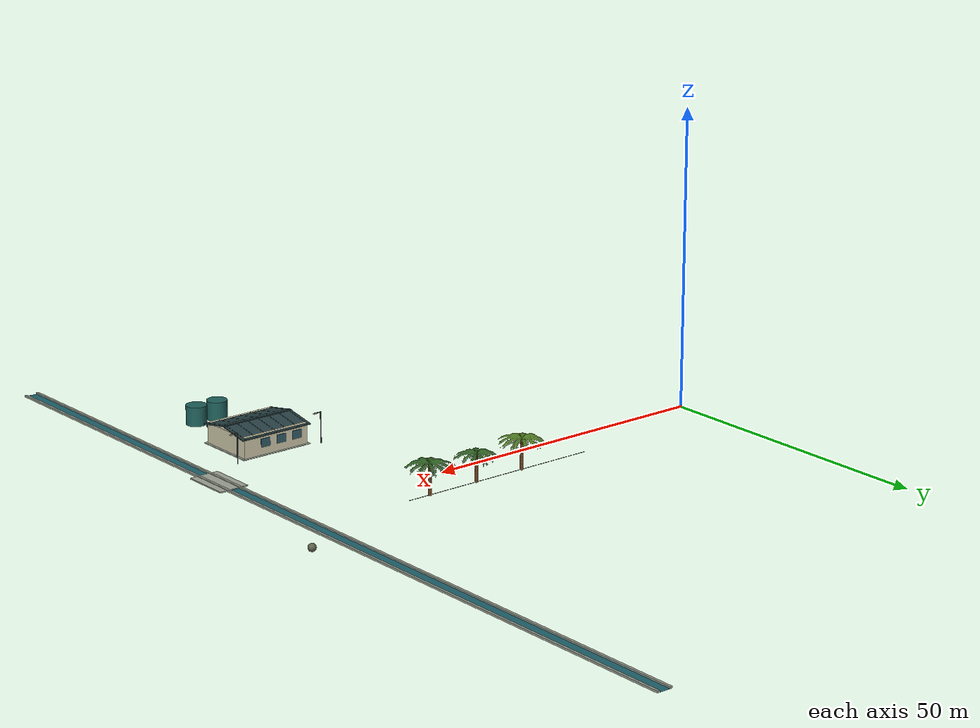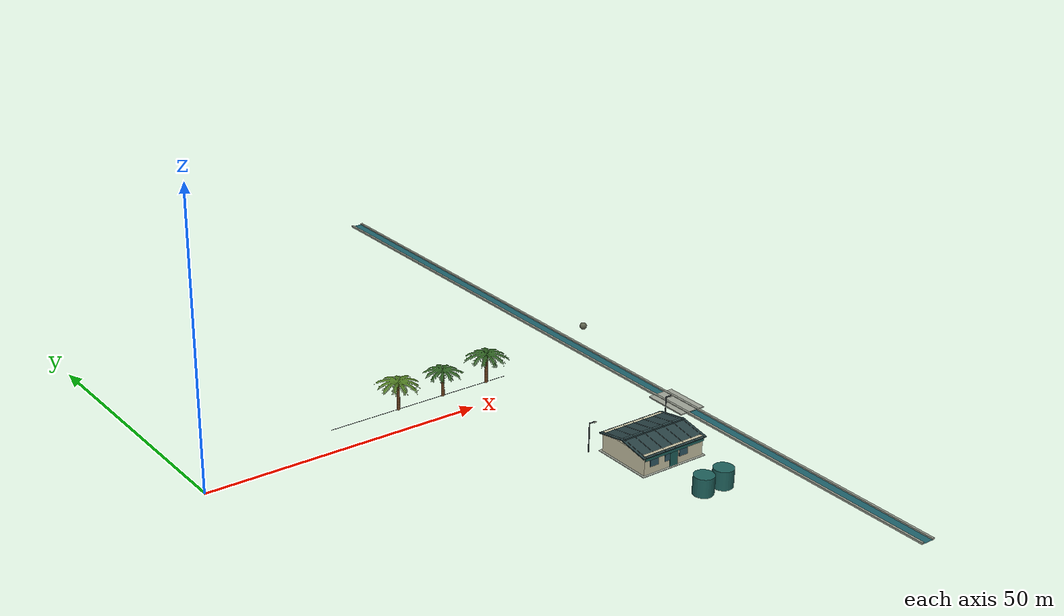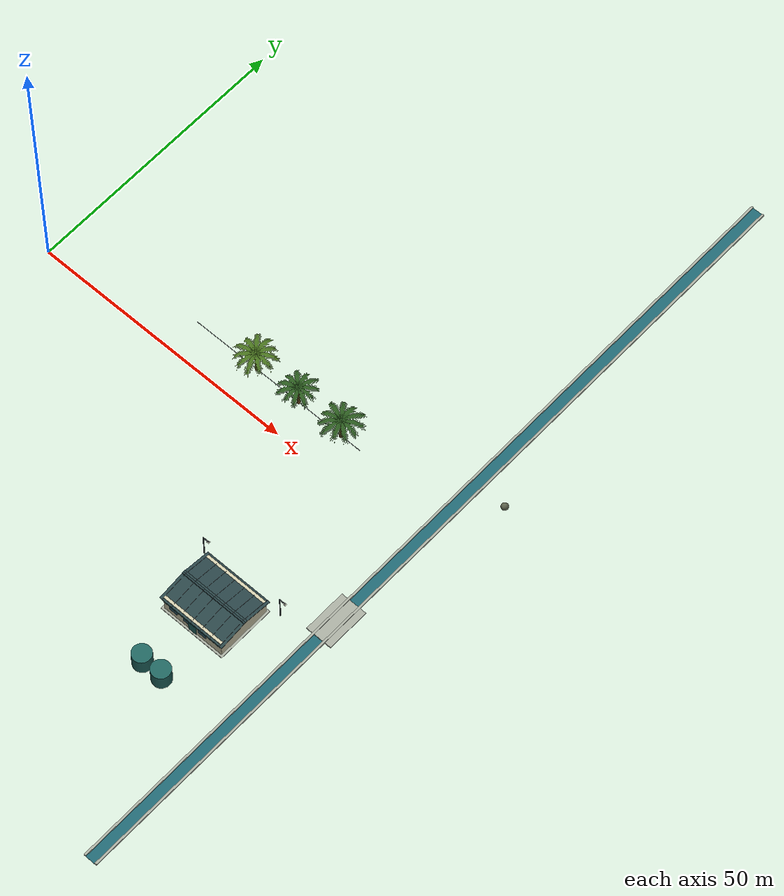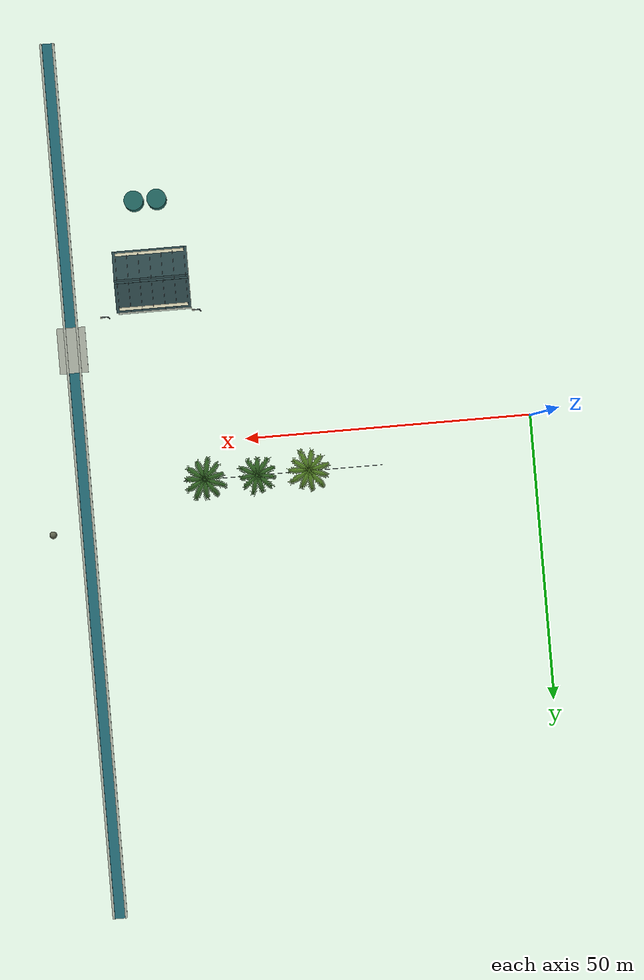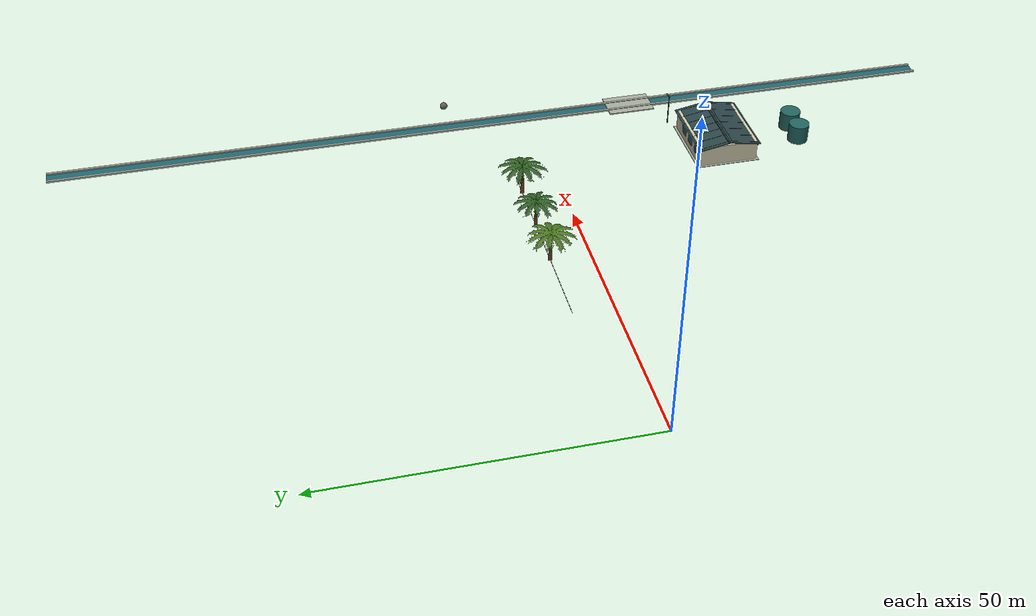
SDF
<sdf version="1.9">
 <world name="fleetscope_estate">
  <model name="irrigation_44_20_0">
   <static>true</static>
   <pose>44 6.5 0 0 0 0</pose>
   <link name="structure">
    <visual name="visual_0">
     <pose>0 0 0.04 0 1.570796 0</pose>
     <geometry><cylinder><radius>0.035</radius><length>35</length></cylinder></geometry>
     <material>
      <ambient>0.25 0.29 0.3 1</ambient>
      <diffuse>0.25 0.29 0.3 1</diffuse>
      <specular>.08 .08 .08 1</specular>
     </material>
    </visual>
    <collision name="collision_0">
     <pose>0 0 0.04 0 1.570796 0</pose>
     <geometry><cylinder><radius>0.035</radius><length>35</length></cylinder></geometry>
    </collision>
   </link>
  </model>
  <model name="palm_033">
   <static>true</static>
   <pose>39.5 6.5 0 0 0 3.937487</pose>
   <link name="structure">
    <visual name="visual_0">
     <geometry>
      <mesh><uri>model://estate_palm/meshes/trunk.obj</uri><scale>1.094903 1.094903 1.094903</scale></mesh>
     </geometry>
     <material>
      <ambient>0.4 0.24 0.11 1</ambient>
      <diffuse>0.4 0.24 0.11 1</diffuse>
      <specular>.08 .08 .08 1</specular>
     </material>
    </visual>
    <visual name="visual_1">
     <geometry>
      <mesh><uri>model://estate_palm/meshes/fronds.obj</uri><scale>1.094903 1.094903 1.094903</scale></mesh>
     </geometry>
     <material>
      <ambient>0.29 0.46 0.12 1</ambient>
      <diffuse>0.29 0.46 0.12 1</diffuse>
      <specular>.08 .08 .08 1</specular>
     </material>
    </visual>
    <collision name="collision_2">
     <pose>0 0 2.463531 0 0 0</pose>
     <geometry>
      <cylinder><radius>0.28467469326689215</radius><length>4.927061998850056</length></cylinder>
     </geometry>
    </collision>
   </link>
  </model>
  <model name="palm_034">
   <static>true</static>
   <pose>48.5 6.5 0 0 0 2.949365</pose>
   <link name="structure">
    <visual name="visual_0">
     <geometry>
      <mesh><uri>model://estate_palm/meshes/trunk.obj</uri><scale>1.000495 1.000495 1.000495</scale></mesh>
     </geometry>
     <material>
      <ambient>0.4 0.24 0.11 1</ambient>
      <diffuse>0.4 0.24 0.11 1</diffuse>
      <specular>.08 .08 .08 1</specular>
     </material>
    </visual>
    <visual name="visual_1">
     <geometry>
      <mesh><uri>model://estate_palm/meshes/fronds.obj</uri><scale>1.000495 1.000495 1.000495</scale></mesh>
     </geometry>
     <material>
      <ambient>0.17 0.36 0.12 1</ambient>
      <diffuse>0.17 0.36 0.12 1</diffuse>
      <specular>.08 .08 .08 1</specular>
     </material>
    </visual>
    <collision name="collision_2">
     <pose>0 0 2.251114 0 0 0</pose>
     <geometry>
      <cylinder><radius>0.2601287509722273</radius><length>4.5022283822116265</length></cylinder>
     </geometry>
    </collision>
   </link>
  </model>
  <model name="palm_035">
   <static>true</static>
   <pose>57.5 6.5 0 0 0 6.202922</pose>
   <link name="structure">
    <visual name="visual_0">
     <geometry>
      <mesh><uri>model://estate_palm/meshes/trunk.obj</uri><scale>1.104482 1.104482 1.104482</scale></mesh>
     </geometry>
     <material>
      <ambient>0.4 0.24 0.11 1</ambient>
      <diffuse>0.4 0.24 0.11 1</diffuse>
      <specular>.08 .08 .08 1</specular>
     </material>
    </visual>
    <visual name="visual_1">
     <geometry>
      <mesh><uri>model://estate_palm/meshes/fronds.obj</uri><scale>1.104482 1.104482 1.104482</scale></mesh>
     </geometry>
     <material>
      <ambient>0.17 0.36 0.12 1</ambient>
      <diffuse>0.17 0.36 0.12 1</diffuse>
      <specular>.08 .08 .08 1</specular>
     </material>
    </visual>
    <collision name="collision_2">
     <pose>0 0 2.485085 0 0 0</pose>
     <geometry>
      <cylinder><radius>0.28716538027294264</radius><length>4.970170043185545</length></cylinder>
     </geometry>
    </collision>
   </link>
  </model>
  <model name="drainage_channel">
   <static>true</static>
   <pose>79 5 0 0 0 0</pose>
   <link name="structure">
    <visual name="visual_0">
     <pose>0 0 0.025 0 0 0</pose>
     <geometry><box><size>1.8 154 0.05</size></box></geometry>
     <material>
      <ambient>0.12 0.39 0.43 1</ambient>
      <diffuse>0.12 0.39 0.43 1</diffuse>
      <specular>.08 .08 .08 1</specular>
     </material>
     <cast_shadows>false</cast_shadows>
    </visual>
    <collision name="collision_0">
     <pose>0 0 0.025 0 0 0</pose>
     <geometry><box><size>1.8 154 0.05</size></box></geometry>
    </collision>
    <visual name="visual_1">
     <pose>-1.1 0 0.15 0 0 0</pose>
     <geometry><box><size>0.4 154 0.3</size></box></geometry>
     <material>
      <ambient>0.63 0.65 0.6 1</ambient>
      <diffuse>0.63 0.65 0.6 1</diffuse>
      <specular>.08 .08 .08 1</specular>
     </material>
    </visual>
    <collision name="collision_1">
     <pose>-1.1 0 0.15 0 0 0</pose>
     <geometry><box><size>0.4 154 0.3</size></box></geometry>
    </collision>
    <visual name="visual_2">
     <pose>1.1 0 0.15 0 0 0</pose>
     <geometry><box><size>0.4 154 0.3</size></box></geometry>
     <material>
      <ambient>0.63 0.65 0.6 1</ambient>
      <diffuse>0.63 0.65 0.6 1</diffuse>
      <specular>.08 .08 .08 1</specular>
     </material>
    </visual>
    <collision name="collision_2">
     <pose>1.1 0 0.15 0 0 0</pose>
     <geometry><box><size>0.4 154 0.3</size></box></geometry>
    </collision>
   </link>
  </model>
  <model name="culvert_crossing">
   <static>true</static>
   <pose>79 -18 0 0 0 0</pose>
   <link name="structure">
    <visual name="visual_0">
     <pose>0 0 0.1 0 0 0</pose>
     <geometry><box><size>5 8 0.2</size></box></geometry>
     <material>
      <ambient>0.63 0.65 0.6 1</ambient>
      <diffuse>0.63 0.65 0.6 1</diffuse>
      <specular>.08 .08 .08 1</specular>
     </material>
    </visual>
    <collision name="collision_0">
     <pose>0 0 0.1 0 0 0</pose>
     <geometry><box><size>5 8 0.2</size></box></geometry>
    </collision>
   </link>
  </model>
  <model name="utility_store">
   <static>true</static>
   <pose>64 -29 0 0 0 0</pose>
   <link name="structure">
    <visual name="visual_0">
     <pose>0 0 0.05 0 0 0</pose>
     <geometry><box><size>12.8 10.8 0.1</size></box></geometry>
     <material>
      <ambient>0.63 0.65 0.6 1</ambient>
      <diffuse>0.63 0.65 0.6 1</diffuse>
      <specular>.08 .08 .08 1</specular>
     </material>
     <cast_shadows>false</cast_shadows>
    </visual>
    <collision name="collision_0">
     <pose>0 0 0.05 0 0 0</pose>
     <geometry><box><size>12.8 10.8 0.1</size></box></geometry>
    </collision>
    <visual name="visual_1">
     <pose>0 0 1.75 0 0 0</pose>
     <geometry><box><size>12 10 3.5</size></box></geometry>
     <material>
      <ambient>0.8 0.78 0.66 1</ambient>
      <diffuse>0.8 0.78 0.66 1</diffuse>
      <specular>.08 .08 .08 1</specular>
     </material>
    </visual>
    <collision name="collision_1">
     <pose>0 0 1.75 0 0 0</pose>
     <geometry><box><size>12 10 3.5</size></box></geometry>
    </collision>
    <visual name="visual_2">
     <pose>-4 -5.035 2.03 0 0 0</pose>
     <geometry><box><size>1.7 0.08 1.4</size></box></geometry>
     <material>
      <ambient>0.19 0.35 0.4 1</ambient>
      <diffuse>0.19 0.35 0.4 1</diffuse>
      <specular>.08 .08 .08 1</specular>
     </material>
    </visual>
    <visual name="visual_3">
     <pose>-4 5.035 2.03 0 0 0</pose>
     <geometry><box><size>1.7 0.08 1.4</size></box></geometry>
     <material>
      <ambient>0.19 0.35 0.4 1</ambient>
      <diffuse>0.19 0.35 0.4 1</diffuse>
      <specular>.08 .08 .08 1</specular>
     </material>
    </visual>
    <visual name="visual_4">
     <pose>-1 -5.035 2.03 0 0 0</pose>
     <geometry><box><size>1.7 0.08 1.4</size></box></geometry>
     <material>
      <ambient>0.19 0.35 0.4 1</ambient>
      <diffuse>0.19 0.35 0.4 1</diffuse>
      <specular>.08 .08 .08 1</specular>
     </material>
    </visual>
    <visual name="visual_5">
     <pose>-1 5.035 2.03 0 0 0</pose>
     <geometry><box><size>1.7 0.08 1.4</size></box></geometry>
     <material>
      <ambient>0.19 0.35 0.4 1</ambient>
      <diffuse>0.19 0.35 0.4 1</diffuse>
      <specular>.08 .08 .08 1</specular>
     </material>
    </visual>
    <visual name="visual_6">
     <pose>2 -5.035 2.03 0 0 0</pose>
     <geometry><box><size>1.7 0.08 1.4</size></box></geometry>
     <material>
      <ambient>0.19 0.35 0.4 1</ambient>
      <diffuse>0.19 0.35 0.4 1</diffuse>
      <specular>.08 .08 .08 1</specular>
     </material>
    </visual>
    <visual name="visual_7">
     <pose>2 5.035 2.03 0 0 0</pose>
     <geometry><box><size>1.7 0.08 1.4</size></box></geometry>
     <material>
      <ambient>0.19 0.35 0.4 1</ambient>
      <diffuse>0.19 0.35 0.4 1</diffuse>
      <specular>.08 .08 .08 1</specular>
     </material>
    </visual>
    <visual name="visual_8">
     <pose>0 -5.065 1.3 0 0 0</pose>
     <geometry><box><size>1.6 0.1 2.6</size></box></geometry>
     <material>
      <ambient>0.12 0.38 0.36 1</ambient>
      <diffuse>0.12 0.38 0.36 1</diffuse>
      <specular>.08 .08 .08 1</specular>
     </material>
    </visual>
    <collision name="collision_8">
     <pose>0 -5.065 1.3 0 0 0</pose>
     <geometry><box><size>1.6 0.1 2.6</size></box></geometry>
    </collision>
    <visual name="visual_9">
     <pose>0 -2.5 3.78 0.18 0 0</pose>
     <geometry><box><size>13 5.8 0.16</size></box></geometry>
     <material>
      <ambient>0.16 0.26 0.27 1</ambient>
      <diffuse>0.16 0.26 0.27 1</diffuse>
      <specular>.08 .08 .08 1</specular>
     </material>
    </visual>
    <collision name="collision_9">
     <pose>0 -2.5 3.78 0.18 0 0</pose>
     <geometry><box><size>13 5.8 0.16</size></box></geometry>
    </collision>
    <visual name="visual_10">
     <pose>0 2.5 3.78 -0.18 0 0</pose>
     <geometry><box><size>13 5.8 0.16</size></box></geometry>
     <material>
      <ambient>0.16 0.26 0.27 1</ambient>
      <diffuse>0.16 0.26 0.27 1</diffuse>
      <specular>.08 .08 .08 1</specular>
     </material>
    </visual>
    <collision name="collision_10">
     <pose>0 2.5 3.78 -0.18 0 0</pose>
     <geometry><box><size>13 5.8 0.16</size></box></geometry>
    </collision>
    <visual name="visual_11">
     <pose>-6 -2.5 3.88 0.18 0 0</pose>
     <geometry><box><size>0.045 5.8 0.05</size></box></geometry>
     <material>
      <ambient>0.25 0.29 0.3 1</ambient>
      <diffuse>0.25 0.29 0.3 1</diffuse>
      <specular>.08 .08 .08 1</specular>
     </material>
     <cast_shadows>false</cast_shadows>
    </visual>
    <visual name="visual_12">
     <pose>-6 2.5 3.88 -0.18 0 0</pose>
     <geometry><box><size>0.045 5.8 0.05</size></box></geometry>
     <material>
      <ambient>0.25 0.29 0.3 1</ambient>
      <diffuse>0.25 0.29 0.3 1</diffuse>
      <specular>.08 .08 .08 1</specular>
     </material>
     <cast_shadows>false</cast_shadows>
    </visual>
    <visual name="visual_13">
     <pose>-4 -2.5 3.88 0.18 0 0</pose>
     <geometry><box><size>0.045 5.8 0.05</size></box></geometry>
     <material>
      <ambient>0.25 0.29 0.3 1</ambient>
      <diffuse>0.25 0.29 0.3 1</diffuse>
      <specular>.08 .08 .08 1</specular>
     </material>
     <cast_shadows>false</cast_shadows>
    </visual>
    <visual name="visual_14">
     <pose>-4 2.5 3.88 -0.18 0 0</pose>
     <geometry><box><size>0.045 5.8 0.05</size></box></geometry>
     <material>
      <ambient>0.25 0.29 0.3 1</ambient>
      <diffuse>0.25 0.29 0.3 1</diffuse>
      <specular>.08 .08 .08 1</specular>
     </material>
     <cast_shadows>false</cast_shadows>
    </visual>
    <visual name="visual_15">
     <pose>-2 -2.5 3.88 0.18 0 0</pose>
     <geometry><box><size>0.045 5.8 0.05</size></box></geometry>
     <material>
      <ambient>0.25 0.29 0.3 1</ambient>
      <diffuse>0.25 0.29 0.3 1</diffuse>
      <specular>.08 .08 .08 1</specular>
     </material>
     <cast_shadows>false</cast_shadows>
    </visual>
    <visual name="visual_16">
     <pose>-2 2.5 3.88 -0.18 0 0</pose>
     <geometry><box><size>0.045 5.8 0.05</size></box></geometry>
     <material>
      <ambient>0.25 0.29 0.3 1</ambient>
      <diffuse>0.25 0.29 0.3 1</diffuse>
      <specular>.08 .08 .08 1</specular>
     </material>
     <cast_shadows>false</cast_shadows>
    </visual>
    <visual name="visual_17">
     <pose>0 -2.5 3.88 0.18 0 0</pose>
     <geometry><box><size>0.045 5.8 0.05</size></box></geometry>
     <material>
      <ambient>0.25 0.29 0.3 1</ambient>
      <diffuse>0.25 0.29 0.3 1</diffuse>
      <specular>.08 .08 .08 1</specular>
     </material>
     <cast_shadows>false</cast_shadows>
    </visual>
    <visual name="visual_18">
     <pose>0 2.5 3.88 -0.18 0 0</pose>
     <geometry><box><size>0.045 5.8 0.05</size></box></geometry>
     <material>
      <ambient>0.25 0.29 0.3 1</ambient>
      <diffuse>0.25 0.29 0.3 1</diffuse>
      <specular>.08 .08 .08 1</specular>
     </material>
     <cast_shadows>false</cast_shadows>
    </visual>
    <visual name="visual_19">
     <pose>2 -2.5 3.88 0.18 0 0</pose>
     <geometry><box><size>0.045 5.8 0.05</size></box></geometry>
     <material>
      <ambient>0.25 0.29 0.3 1</ambient>
      <diffuse>0.25 0.29 0.3 1</diffuse>
      <specular>.08 .08 .08 1</specular>
     </material>
     <cast_shadows>false</cast_shadows>
    </visual>
    <visual name="visual_20">
     <pose>2 2.5 3.88 -0.18 0 0</pose>
     <geometry><box><size>0.045 5.8 0.05</size></box></geometry>
     <material>
      <ambient>0.25 0.29 0.3 1</ambient>
      <diffuse>0.25 0.29 0.3 1</diffuse>
      <specular>.08 .08 .08 1</specular>
     </material>
     <cast_shadows>false</cast_shadows>
    </visual>
    <visual name="visual_21">
     <pose>4 -2.5 3.88 0.18 0 0</pose>
     <geometry><box><size>0.045 5.8 0.05</size></box></geometry>
     <material>
      <ambient>0.25 0.29 0.3 1</ambient>
      <diffuse>0.25 0.29 0.3 1</diffuse>
      <specular>.08 .08 .08 1</specular>
     </material>
     <cast_shadows>false</cast_shadows>
    </visual>
    <visual name="visual_22">
     <pose>4 2.5 3.88 -0.18 0 0</pose>
     <geometry><box><size>0.045 5.8 0.05</size></box></geometry>
     <material>
      <ambient>0.25 0.29 0.3 1</ambient>
      <diffuse>0.25 0.29 0.3 1</diffuse>
      <specular>.08 .08 .08 1</specular>
     </material>
     <cast_shadows>false</cast_shadows>
    </visual>
    <visual name="visual_23">
     <pose>6 -2.5 3.88 0.18 0 0</pose>
     <geometry><box><size>0.045 5.8 0.05</size></box></geometry>
     <material>
      <ambient>0.25 0.29 0.3 1</ambient>
      <diffuse>0.25 0.29 0.3 1</diffuse>
      <specular>.08 .08 .08 1</specular>
     </material>
     <cast_shadows>false</cast_shadows>
    </visual>
    <visual name="visual_24">
     <pose>6 2.5 3.88 -0.18 0 0</pose>
     <geometry><box><size>0.045 5.8 0.05</size></box></geometry>
     <material>
      <ambient>0.25 0.29 0.3 1</ambient>
      <diffuse>0.25 0.29 0.3 1</diffuse>
      <specular>.08 .08 .08 1</specular>
     </material>
     <cast_shadows>false</cast_shadows>
    </visual>
    <visual name="visual_25">
     <pose>0 -5.14 2.95 0 0 0</pose>
     <geometry><box><size>12 0.16 0.65</size></box></geometry>
     <material>
      <ambient>0.12 0.38 0.36 1</ambient>
      <diffuse>0.12 0.38 0.36 1</diffuse>
      <specular>.08 .08 .08 1</specular>
     </material>
    </visual>
   </link>
  </model>
  <model name="road_light_56">
   <static>true</static>
   <pose>56 -23 0 0 0 0</pose>
   <link name="structure">
    <visual name="visual_0">
     <pose>0 0 2.6 0 0 0</pose>
     <geometry><cylinder><radius>0.09</radius><length>5.2</length></cylinder></geometry>
     <material>
      <ambient>0.25 0.29 0.3 1</ambient>
      <diffuse>0.25 0.29 0.3 1</diffuse>
      <specular>.08 .08 .08 1</specular>
     </material>
    </visual>
    <collision name="collision_0">
     <pose>0 0 2.6 0 0 0</pose>
     <geometry><cylinder><radius>0.09</radius><length>5.2</length></cylinder></geometry>
    </collision>
    <visual name="visual_1">
     <pose>0.6 0 5.1 0 0 0</pose>
     <geometry><box><size>1.3 0.15 0.12</size></box></geometry>
     <material>
      <ambient>0.25 0.29 0.3 1</ambient>
      <diffuse>0.25 0.29 0.3 1</diffuse>
      <specular>.08 .08 .08 1</specular>
     </material>
    </visual>
    <collision name="collision_1">
     <pose>0.6 0 5.1 0 0 0</pose>
     <geometry><box><size>1.3 0.15 0.12</size></box></geometry>
    </collision>
    <visual name="visual_2">
     <pose>1.1 0 5.03 0 0 0</pose>
     <geometry><box><size>0.5 0.35 0.08</size></box></geometry>
     <material>
      <ambient>0.9 0.9 0.81 1</ambient>
      <diffuse>0.9 0.9 0.81 1</diffuse>
      <specular>.08 .08 .08 1</specular>
     </material>
     <cast_shadows>false</cast_shadows>
    </visual>
   </link>
  </model>
  <model name="road_light_72">
   <static>true</static>
   <pose>72 -23 0 0 0 0</pose>
   <link name="structure">
    <visual name="visual_0">
     <pose>0 0 2.6 0 0 0</pose>
     <geometry><cylinder><radius>0.09</radius><length>5.2</length></cylinder></geometry>
     <material>
      <ambient>0.25 0.29 0.3 1</ambient>
      <diffuse>0.25 0.29 0.3 1</diffuse>
      <specular>.08 .08 .08 1</specular>
     </material>
    </visual>
    <collision name="collision_0">
     <pose>0 0 2.6 0 0 0</pose>
     <geometry><cylinder><radius>0.09</radius><length>5.2</length></cylinder></geometry>
    </collision>
    <visual name="visual_1">
     <pose>0.6 0 5.1 0 0 0</pose>
     <geometry><box><size>1.3 0.15 0.12</size></box></geometry>
     <material>
      <ambient>0.25 0.29 0.3 1</ambient>
      <diffuse>0.25 0.29 0.3 1</diffuse>
      <specular>.08 .08 .08 1</specular>
     </material>
    </visual>
    <collision name="collision_1">
     <pose>0.6 0 5.1 0 0 0</pose>
     <geometry><box><size>1.3 0.15 0.12</size></box></geometry>
    </collision>
    <visual name="visual_2">
     <pose>1.1 0 5.03 0 0 0</pose>
     <geometry><box><size>0.5 0.35 0.08</size></box></geometry>
     <material>
      <ambient>0.9 0.9 0.81 1</ambient>
      <diffuse>0.9 0.9 0.81 1</diffuse>
      <specular>.08 .08 .08 1</specular>
     </material>
     <cast_shadows>false</cast_shadows>
    </visual>
   </link>
  </model>
  <model name="water_tanks">
   <static>true</static>
   <pose>62 -43 0 0 0 0</pose>
   <link name="structure">
    <visual name="visual_0">
     <pose>0 0 1.6 0 0 0</pose>
     <geometry><cylinder><radius>1.7</radius><length>3.2</length></cylinder></geometry>
     <material>
      <ambient>0.12 0.38 0.36 1</ambient>
      <diffuse>0.12 0.38 0.36 1</diffuse>
      <specular>.08 .08 .08 1</specular>
     </material>
    </visual>
    <collision name="collision_0">
     <pose>0 0 1.6 0 0 0</pose>
     <geometry><cylinder><radius>1.7</radius><length>3.2</length></cylinder></geometry>
    </collision>
    <visual name="visual_1">
     <pose>4 0 1.6 0 0 0</pose>
     <geometry><cylinder><radius>1.7</radius><length>3.2</length></cylinder></geometry>
     <material>
      <ambient>0.12 0.38 0.36 1</ambient>
      <diffuse>0.12 0.38 0.36 1</diffuse>
      <specular>.08 .08 .08 1</specular>
     </material>
    </visual>
    <collision name="collision_1">
     <pose>4 0 1.6 0 0 0</pose>
     <geometry><cylinder><radius>1.7</radius><length>3.2</length></cylinder></geometry>
    </collision>
   </link>
  </model>
  <model name="landscape_rock_85_14">
   <static>true</static>
   <pose>85 14 0 0 0 0</pose>
   <link name="structure">
    <visual name="visual_0">
     <pose>0 0 0.6 0 0 0</pose>
     <geometry><sphere><radius>0.65</radius></sphere></geometry>
     <material>
      <ambient>0.35 0.37 0.29 1</ambient>
      <diffuse>0.35 0.37 0.29 1</diffuse>
      <specular>.08 .08 .08 1</specular>
     </material>
    </visual>
    <collision name="collision_0">
     <pose>0 0 0.6 0 0 0</pose>
     <geometry><sphere><radius>0.65</radius></sphere></geometry>
    </collision>
   </link>
  </model>
 </world>
</sdf>
